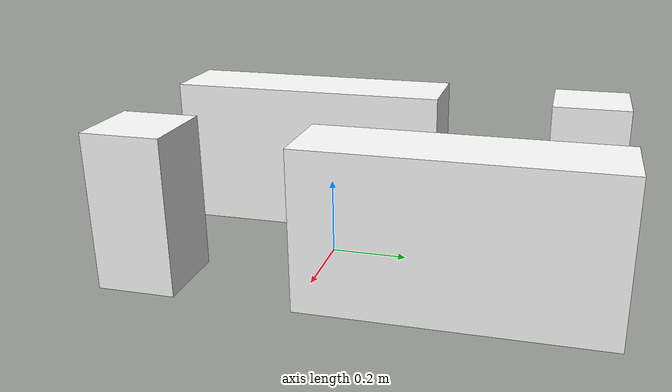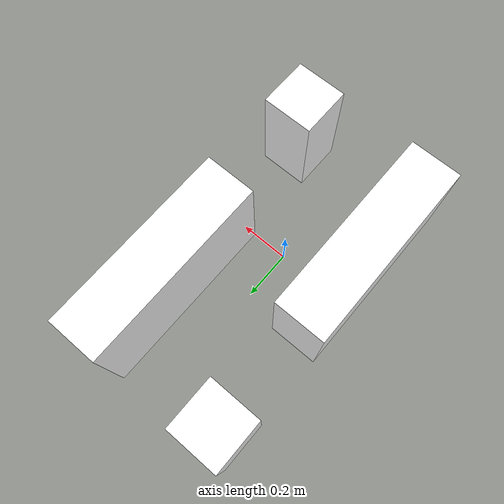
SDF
<?xml version="1.0" ?>
<sdf version="1.8">
  <model name="wall">
    <static>true</static>
    <link name="obastacle_wall_1">
      <pose>-0.25 0.65 0.2 0 0 0</pose>
      <collision name="collision">
        <geometry>
          <box>
            <size>0.2 0.2 0.4</size>
          </box>
        </geometry>
      </collision>
      <visual name="visual">
        <geometry>
          <box>
            <size>0.2 0.2 0.4</size>
          </box>
        </geometry>
        <material>
            <pbr>
              <metal>
                <albedo_map>model://turtlebot3_autorace_2025/wall/materials/textures/bricks.png</albedo_map>
              </metal>
            </pbr>
            <ambient>1 1 1 1</ambient>
            <diffuse>1 1 1 1</diffuse>
            <specular>0.2 0.2 0.2 1</specular>
            <emissive>0 0 0 1</emissive>
        </material>
      </visual>
    </link>

    <link name="obstacle_wall_2">
      <pose>-0.25 -0.125 0.2 0 0 0</pose>
      <collision name="collision">
        <geometry>
          <box>
            <size>0.2 0.75 0.4</size>
          </box>
        </geometry>
      </collision>
      <visual name="visual">
        <geometry>
          <box>
            <size>0.2 0.75 0.4</size>
          </box>
        </geometry>
        <material>
            <pbr>
              <metal>
                <albedo_map>model://turtlebot3_autorace_2025/wall/materials/textures/bricks.png</albedo_map>
              </metal>
            </pbr>
            <ambient>1 1 1 1</ambient>
            <diffuse>1 1 1 1</diffuse>
            <specular>0.2 0.2 0.2 1</specular>
            <emissive>0 0 0 1</emissive>
        </material>
      </visual>
    </link>

    <link name="obstacle_wall_3">
      <pose>0.25 0.375 0.2 0 0 0</pose>
      <collision name="collision">
        <geometry>
          <box>
            <size>0.2 0.75 0.4</size>
          </box>
        </geometry>
      </collision>
      <visual name="visual">
        <geometry>
          <box>
            <size>0.2 0.75 0.4</size>
          </box>
        </geometry>
        <material>
            <pbr>
              <metal>
                <albedo_map>model://turtlebot3_autorace_2025/wall/materials/textures/bricks.png</albedo_map>
              </metal>
            </pbr>
            <ambient>1 1 1 1</ambient>
            <diffuse>1 1 1 1</diffuse>
            <specular>0.2 0.2 0.2 1</specular>
            <emissive>0 0 0 1</emissive>
        </material>
      </visual>
    </link>

    <link name="obastacle_wall_4">
      <pose>0.25 -0.4 0.2 0 0 0</pose>
      <collision name="collision">
        <geometry>
          <box>
            <size>0.2 0.2 0.4</size>
          </box>
        </geometry>
      </collision>
      <visual name="visual">
        <geometry>
          <box>
            <size>0.2 0.2 0.4</size>
          </box>
        </geometry>
        <material>
            <pbr>
              <metal>
                <albedo_map>model://turtlebot3_autorace_2025/wall/materials/textures/bricks.png</albedo_map>
              </metal>
            </pbr>
            <ambient>1 1 1 1</ambient>
            <diffuse>1 1 1 1</diffuse>
            <specular>0.2 0.2 0.2 1</specular>
            <emissive>0 0 0 1</emissive>
        </material>
      </visual>
    </link>

  </model>
</sdf>
